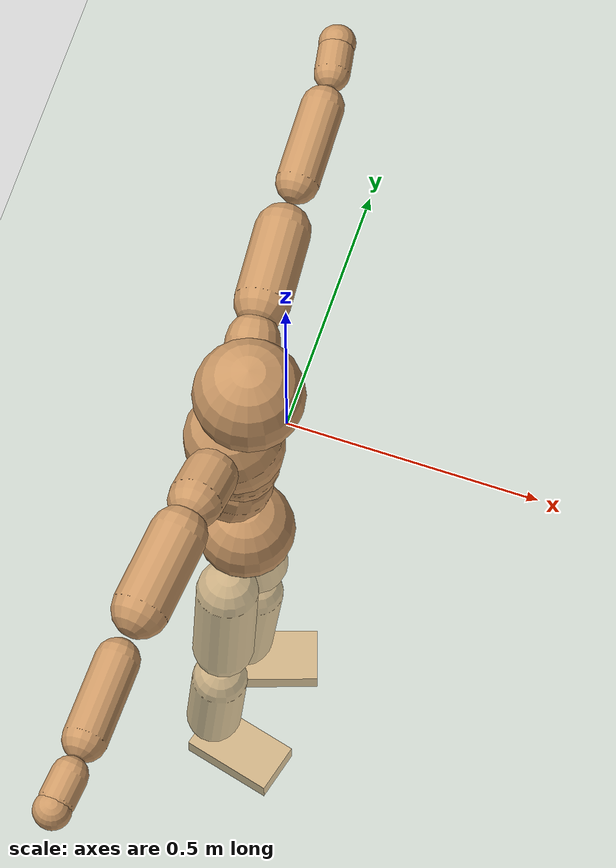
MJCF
<mujoco model="humanoid">
  <compiler coordinate="local"/>
  <default>
    <joint damping="0.0" armature="0.01" stiffness="0.0" limited="true"/>
    <geom conaffinity="1" condim="3" contype="7" margin="0.001" rgba="0.8 0.6 .4 1"/>
  </default>
  <asset>
    <texture type="skybox" builtin="gradient" rgb1=".4 .5 .6" rgb2="0 0 0" width="100" height="100"/>
    <texture builtin="flat" height="1278" mark="cross" markrgb="1 1 1" name="texgeom" random="0.01" rgb1="0.8 0.6 0.4" rgb2="0.8 0.6 0.4" type="cube" width="127"/>
    <texture builtin="checker" height="100" name="texplane" rgb1="0 0 0" rgb2="0.8 0.8 0.8" type="2d" width="100"/>
    <material name="MatPlane" reflectance="0.5" shininess="1" specular="1" texrepeat="60 60" texture="texplane"/>
    <material name="geom" texture="texgeom" texuniform="true"/>
  </asset>
  <worldbody>
    <light cutoff="100" diffuse="1 1 1" dir="-0 0 -1.3" directional="true" exponent="1" pos="0 0 1.3" specular=".1 .1 .1"/>
    <geom conaffinity="1" condim="3" name="floor" pos="0 0 0" rgba="0.8 0.9 0.8 1" size="100 100 .2" type="plane" material="MatPlane"/>
    <body name="Pelvis" pos="-0.0019 -0.2391 0.0251">
      <freejoint name="Pelvis"/>
      <geom type="sphere" contype="1" conaffinity="1" density="500" size="0.0948" pos="0.0000 0.0000 0.0000" name="Pelvis"/>
      <body name="L_Hip" pos="-0.0186 0.0574 -0.0818">
        <joint name="L_Hip_x" type="hinge" pos="0 0 0" axis="1 0 0" stiffness="800" damping="80" armature="0.02" range="-180.0000 180.0000"/>
        <joint name="L_Hip_y" type="hinge" pos="0 0 0" axis="0 1 0" stiffness="800" damping="80" armature="0.02" range="-180.0000 180.0000"/>
        <joint name="L_Hip_z" type="hinge" pos="0 0 0" axis="0 0 1" stiffness="800" damping="80" armature="0.02" range="-180.0000 180.0000"/>
        <geom type="capsule" contype="1" conaffinity="1" density="500" fromto="0.0017 0.0087 -0.0767 0.0069 0.0346 -0.3069" size="0.0607" name="L_Hip"/>
        <body name="L_Knee" pos="0.0087 0.0433 -0.3836">
          <joint name="L_Knee_x" type="hinge" pos="0 0 0" axis="1 0 0" stiffness="800" damping="80" armature="0.02" range="-180.0000 180.0000"/>
          <joint name="L_Knee_y" type="hinge" pos="0 0 0" axis="0 1 0" stiffness="800" damping="80" armature="0.02" range="-180.0000 180.0000"/>
          <joint name="L_Knee_z" type="hinge" pos="0 0 0" axis="0 0 1" stiffness="800" damping="80" armature="0.02" range="-180.0000 180.0000"/>
          <geom type="capsule" contype="1" conaffinity="1" density="500" fromto="-0.0073 -0.0029 -0.0842 -0.0293 -0.0116 -0.3368" size="0.0541" name="L_Knee"/>
          <body name="L_Ankle" pos="-0.0366 -0.0144 -0.421">
            <joint name="L_Ankle_x" type="hinge" pos="0 0 0" axis="1 0 0" stiffness="800" damping="80" armature="0.02" range="-180.0000 180.0000"/>
            <joint name="L_Ankle_y" type="hinge" pos="0 0 0" axis="0 1 0" stiffness="800" damping="80" armature="0.02" range="-180.0000 180.0000"/>
            <joint name="L_Ankle_z" type="hinge" pos="0 0 0" axis="0 0 1" stiffness="800" damping="80" armature="0.02" range="-180.0000 180.0000"/>
            <geom type="box" contype="1" conaffinity="1" density="500" pos="0.0605 0.0210 -0.0299" size="0.0876 0.0521 0.0213" quat="0.9861 0.0000 0.0000 0.1663" name="L_Ankle"/>
            <body name="L_Toe" pos="0.121 0.042 -0.0598">
              <joint name="L_Toe_x" type="hinge" pos="0 0 0" axis="1 0 0" stiffness="500" damping="50" armature="0.02" range="-180.0000 180.0000"/>
              <joint name="L_Toe_y" type="hinge" pos="0 0 0" axis="0 1 0" stiffness="500" damping="50" armature="0.02" range="-180.0000 180.0000"/>
              <joint name="L_Toe_z" type="hinge" pos="0 0 0" axis="0 0 1" stiffness="500" damping="50" armature="0.02" range="-180.0000 180.0000"/>
              <geom type="box" contype="1" conaffinity="1" density="500" pos="0.0000 0.0000 0.0294" size="0.0011 0.0025 0.001" quat="0.9853 0.0000 0.0000 0.1709" name="L_Toe"/>
            </body>
          </body>
        </body>
      </body>
      <body name="R_Hip" pos="-0.0146 -0.0591 -0.0901">
        <joint name="R_Hip_x" type="hinge" pos="0 0 0" axis="1 0 0" stiffness="800" damping="80" armature="0.02" range="-180.0000 180.0000"/>
        <joint name="R_Hip_y" type="hinge" pos="0 0 0" axis="0 1 0" stiffness="800" damping="80" armature="0.02" range="-180.0000 180.0000"/>
        <joint name="R_Hip_z" type="hinge" pos="0 0 0" axis="0 0 1" stiffness="800" damping="80" armature="0.02" range="-180.0000 180.0000"/>
        <geom type="capsule" contype="1" conaffinity="1" density="500" fromto="-0.0008 -0.0086 -0.0759 -0.0033 -0.0346 -0.3037" size="0.0601" name="R_Hip"/>
        <body name="R_Knee" pos="-0.0042 -0.0432 -0.3796">
          <joint name="R_Knee_x" type="hinge" pos="0 0 0" axis="1 0 0" stiffness="800" damping="80" armature="0.02" range="-180.0000 180.0000"/>
          <joint name="R_Knee_y" type="hinge" pos="0 0 0" axis="0 1 0" stiffness="800" damping="80" armature="0.02" range="-180.0000 180.0000"/>
          <joint name="R_Knee_z" type="hinge" pos="0 0 0" axis="0 0 1" stiffness="800" damping="80" armature="0.02" range="-180.0000 180.0000"/>
          <geom type="capsule" contype="1" conaffinity="1" density="500" fromto="-0.0068 0.0037 -0.0827 -0.0272 0.0150 -0.3310" size="0.0545" name="R_Knee"/>
          <body name="R_Ankle" pos="-0.034 0.0187 -0.4137">
            <joint name="R_Ankle_x" type="hinge" pos="0 0 0" axis="1 0 0" stiffness="800" damping="80" armature="0.02" range="-180.0000 180.0000"/>
            <joint name="R_Ankle_y" type="hinge" pos="0 0 0" axis="0 1 0" stiffness="800" damping="80" armature="0.02" range="-180.0000 180.0000"/>
            <joint name="R_Ankle_z" type="hinge" pos="0 0 0" axis="0 0 1" stiffness="800" damping="80" armature="0.02" range="-180.0000 180.0000"/>
            <geom type="box" contype="1" conaffinity="1" density="500" pos="0.0649 -0.0167 -0.0307" size="0.0907 0.0508 0.0217" quat="0.9921 0.0000 0.0000 -0.1255" name="R_Ankle"/>
            <body name="R_Toe" pos="0.1299 -0.0334 -0.0613">
              <joint name="R_Toe_x" type="hinge" pos="0 0 0" axis="1 0 0" stiffness="500" damping="50" armature="0.02" range="-180.0000 180.0000"/>
              <joint name="R_Toe_y" type="hinge" pos="0 0 0" axis="0 1 0" stiffness="500" damping="50" armature="0.02" range="-180.0000 180.0000"/>
              <joint name="R_Toe_z" type="hinge" pos="0 0 0" axis="0 0 1" stiffness="500" damping="50" armature="0.02" range="-180.0000 180.0000"/>
              <geom type="box" contype="1" conaffinity="1" density="500" pos="0.0000 0.0000 0.0309" size="0.0011 0.0025 0.0011" quat="0.9932 0.0000 0.0000 -0.1166" name="R_Toe"/>
            </body>
          </body>
        </body>
      </body>
      <body name="Torso" pos="-0.0357 0.0043 0.1233">
        <joint name="Torso_x" type="hinge" pos="0 0 0" axis="1 0 0" stiffness="1000" damping="100" armature="0.02" range="-180.0000 180.0000"/>
        <joint name="Torso_y" type="hinge" pos="0 0 0" axis="0 1 0" stiffness="1000" damping="100" armature="0.02" range="-180.0000 180.0000"/>
        <joint name="Torso_z" type="hinge" pos="0 0 0" axis="0 0 1" stiffness="1000" damping="100" armature="0.02" range="-180.0000 180.0000"/>
        <geom type="capsule" contype="1" conaffinity="1" density="500" fromto="0.0167 0.0027 0.0826 0.0111 0.0018 0.0551" size="0.073005" name="Torso"/>
        <body name="Spine" pos="0.0278 0.0046 0.1377">
          <joint name="Spine_x" type="hinge" pos="0 0 0" axis="1 0 0" stiffness="1000" damping="100" armature="0.02" range="-180.0000 180.0000"/>
          <joint name="Spine_y" type="hinge" pos="0 0 0" axis="0 1 0" stiffness="1000" damping="100" armature="0.02" range="-180.0000 180.0000"/>
          <joint name="Spine_z" type="hinge" pos="0 0 0" axis="0 0 1" stiffness="1000" damping="100" armature="0.02" range="-180.0000 180.0000"/>
          <geom type="capsule" contype="1" conaffinity="1" density="500" fromto="0.0016 -0.0014 0.0335 0.0011 -0.0009 0.0223" size="0.071982" name="Spine"/>
          <body name="Chest" pos="0.0027 -0.0023 0.0559">
            <joint name="Chest_x" type="hinge" pos="0 0 0" axis="1 0 0" stiffness="1000" damping="100" armature="0.02" range="-180.0000 180.0000"/>
            <joint name="Chest_y" type="hinge" pos="0 0 0" axis="0 1 0" stiffness="1000" damping="100" armature="0.02" range="-180.0000 180.0000"/>
            <joint name="Chest_z" type="hinge" pos="0 0 0" axis="0 0 1" stiffness="1000" damping="100" armature="0.02" range="-180.0000 180.0000"/>
            <geom type="capsule" contype="1" conaffinity="1" density="500" fromto="-0.0150 -0.0049 0.0863 -0.0100 -0.0032 0.0575" size="0.092442" name="Chest"/>
            <body name="Neck" pos="-0.0322 -0.013 0.2081">
              <joint name="Neck_x" type="hinge" pos="0 0 0" axis="1 0 0" stiffness="500" damping="50" armature="0.02" range="-180.0000 180.0000"/>
              <joint name="Neck_y" type="hinge" pos="0 0 0" axis="0 1 0" stiffness="500" damping="50" armature="0.02" range="-180.0000 180.0000"/>
              <joint name="Neck_z" type="hinge" pos="0 0 0" axis="0 0 1" stiffness="500" damping="50" armature="0.02" range="-180.0000 180.0000"/>
              <geom type="capsule" contype="1" conaffinity="1" density="500" fromto="0.0099 0.0020 0.0177 0.0397 0.0078 0.0709" size="0.041571" name="Neck"/>
              <body name="Head" pos="0.0497 0.0098 0.0887">
                <joint name="Head_x" type="hinge" pos="0 0 0" axis="1 0 0" stiffness="500" damping="50" armature="0.02" range="-180.0000 180.0000"/>
                <joint name="Head_y" type="hinge" pos="0 0 0" axis="0 1 0" stiffness="500" damping="50" armature="0.02" range="-180.0000 180.0000"/>
                <joint name="Head_z" type="hinge" pos="0 0 0" axis="0 0 1" stiffness="500" damping="50" armature="0.02" range="-180.0000 180.0000"/>
                <geom type="sphere" contype="1" conaffinity="1" density="500" size="0.1034" pos="0.0000 0.0000 0.0000" name="Head"/>
              </body>
            </body>
            <body name="L_Thorax" pos="-0.0193 0.0695 0.1123">
              <joint name="L_Thorax_x" type="hinge" pos="0 0 0" axis="1 0 0" stiffness="500" damping="50" armature="0.02" range="-180.0000 180.0000"/>
              <joint name="L_Thorax_y" type="hinge" pos="0 0 0" axis="0 1 0" stiffness="500" damping="50" armature="0.02" range="-180.0000 180.0000"/>
              <joint name="L_Thorax_z" type="hinge" pos="0 0 0" axis="0 0 1" stiffness="500" damping="50" armature="0.02" range="-180.0000 180.0000"/>
              <geom type="capsule" contype="1" conaffinity="1" density="500" fromto="-0.0035 0.0239 0.0089 -0.0140 0.0957 0.0357" size="0.0515" name="L_Thorax"/>
              <body name="L_Shoulder" pos="-0.0175 0.1197 0.0446">
                <joint name="L_Shoulder_x" type="hinge" pos="0 0 0" axis="1 0 0" stiffness="500" damping="50" armature="0.02" range="-720.0000 720.0000"/>
                <joint name="L_Shoulder_y" type="hinge" pos="0 0 0" axis="0 1 0" stiffness="500" damping="50" armature="0.02" range="-720.0000 720.0000"/>
                <joint name="L_Shoulder_z" type="hinge" pos="0 0 0" axis="0 0 1" stiffness="500" damping="50" armature="0.02" range="-720.0000 720.0000"/>
                <geom type="capsule" contype="1" conaffinity="1" density="500" fromto="-0.0042 0.0510 -0.0031 -0.0170 0.2040 -0.0123" size="0.0534" name="L_Shoulder"/>
                <body name="L_Elbow" pos="-0.0212 0.2549 -0.0153">
                  <joint name="L_Elbow_x" type="hinge" pos="0 0 0" axis="1 0 0" stiffness="500" damping="50" armature="0.02" range="-720.0000 720.0000"/>
                  <joint name="L_Elbow_y" type="hinge" pos="0 0 0" axis="0 1 0" stiffness="500" damping="50" armature="0.02" range="-720.0000 720.0000"/>
                  <joint name="L_Elbow_z" type="hinge" pos="0 0 0" axis="0 0 1" stiffness="500" damping="50" armature="0.02" range="-720.0000 720.0000"/>
                  <geom type="capsule" contype="1" conaffinity="1" density="500" fromto="-0.0017 0.0528 0.0024 -0.0066 0.2112 0.0096" size="0.0415" name="L_Elbow"/>
                  <body name="L_Wrist" pos="-0.0083 0.2641 0.012">
                    <joint name="L_Wrist_x" type="hinge" pos="0 0 0" axis="1 0 0" stiffness="300" damping="30" armature="0.02" range="-180.0000 180.0000"/>
                    <joint name="L_Wrist_y" type="hinge" pos="0 0 0" axis="0 1 0" stiffness="300" damping="30" armature="0.02" range="-180.0000 180.0000"/>
                    <joint name="L_Wrist_z" type="hinge" pos="0 0 0" axis="0 0 1" stiffness="300" damping="30" armature="0.02" range="-180.0000 180.0000"/>
                    <geom type="capsule" contype="1" conaffinity="1" density="500" fromto="-0.0031 0.0173 -0.0021 -0.0125 0.0690 -0.0084" size="0.0339" name="L_Wrist"/>
                    <body name="L_Hand" pos="-0.0156 0.0863 -0.0105">
                      <joint name="L_Hand_x" type="hinge" pos="0 0 0" axis="1 0 0" stiffness="300" damping="30" armature="0.02" range="-180.0000 180.0000"/>
                      <joint name="L_Hand_y" type="hinge" pos="0 0 0" axis="0 1 0" stiffness="300" damping="30" armature="0.02" range="-180.0000 180.0000"/>
                      <joint name="L_Hand_z" type="hinge" pos="0 0 0" axis="0 0 1" stiffness="300" damping="30" armature="0.02" range="-180.0000 180.0000"/>
                      <geom type="sphere" contype="1" conaffinity="1" density="500" size="0.0354" pos="0.0000 0.0000 0.0000" name="L_Hand"/>
                    </body>
                  </body>
                </body>
              </body>
            </body>
            <body name="R_Thorax" pos="-0.0235 -0.0808 0.1109">
              <joint name="R_Thorax_x" type="hinge" pos="0 0 0" axis="1 0 0" stiffness="500" damping="50" armature="0.02" range="-180.0000 180.0000"/>
              <joint name="R_Thorax_y" type="hinge" pos="0 0 0" axis="0 1 0" stiffness="500" damping="50" armature="0.02" range="-180.0000 180.0000"/>
              <joint name="R_Thorax_z" type="hinge" pos="0 0 0" axis="0 0 1" stiffness="500" damping="50" armature="0.02" range="-180.0000 180.0000"/>
              <geom type="capsule" contype="1" conaffinity="1" density="500" fromto="-0.0014 -0.0221 0.0092 -0.0058 -0.0884 0.0368" size="0.0517" name="R_Thorax"/>
              <body name="R_Shoulder" pos="-0.0072 -0.1106 0.0459">
                <joint name="R_Shoulder_x" type="hinge" pos="0 0 0" axis="1 0 0" stiffness="500" damping="50" armature="0.02" range="-720.0000 720.0000"/>
                <joint name="R_Shoulder_y" type="hinge" pos="0 0 0" axis="0 1 0" stiffness="500" damping="50" armature="0.02" range="-720.0000 720.0000"/>
                <joint name="R_Shoulder_z" type="hinge" pos="0 0 0" axis="0 0 1" stiffness="500" damping="50" armature="0.02" range="-720.0000 720.0000"/>
                <geom type="capsule" contype="1" conaffinity="1" density="500" fromto="-0.0058 -0.0518 -0.0029 -0.0234 -0.2073 -0.0118" size="0.0544" name="R_Shoulder"/>
                <body name="R_Elbow" pos="-0.0292 -0.2591 -0.0147">
                  <joint name="R_Elbow_x" type="hinge" pos="0 0 0" axis="1 0 0" stiffness="500" damping="50" armature="0.02" range="-720.0000 720.0000"/>
                  <joint name="R_Elbow_y" type="hinge" pos="0 0 0" axis="0 1 0" stiffness="500" damping="50" armature="0.02" range="-720.0000 720.0000"/>
                  <joint name="R_Elbow_z" type="hinge" pos="0 0 0" axis="0 0 1" stiffness="500" damping="50" armature="0.02" range="-720.0000 720.0000"/>
                  <geom type="capsule" contype="1" conaffinity="1" density="500" fromto="-0.0013 -0.0538 0.0015 -0.0052 -0.2150 0.0061" size="0.0423" name="R_Elbow"/>
                  <body name="R_Wrist" pos="-0.0065 -0.2688 0.0077">
                    <joint name="R_Wrist_x" type="hinge" pos="0 0 0" axis="1 0 0" stiffness="300" damping="30" armature="0.02" range="-180.0000 180.0000"/>
                    <joint name="R_Wrist_y" type="hinge" pos="0 0 0" axis="0 1 0" stiffness="300" damping="30" armature="0.02" range="-180.0000 180.0000"/>
                    <joint name="R_Wrist_z" type="hinge" pos="0 0 0" axis="0 0 1" stiffness="300" damping="30" armature="0.02" range="-180.0000 180.0000"/>
                    <geom type="capsule" contype="1" conaffinity="1" density="500" fromto="-0.0020 -0.0177 -0.0017 -0.0081 -0.0708 -0.0069" size="0.0346" name="R_Wrist"/>
                    <body name="R_Hand" pos="-0.0101 -0.0886 -0.0086">
                      <joint name="R_Hand_x" type="hinge" pos="0 0 0" axis="1 0 0" stiffness="300" damping="30" armature="0.02" range="-180.0000 180.0000"/>
                      <joint name="R_Hand_y" type="hinge" pos="0 0 0" axis="0 1 0" stiffness="300" damping="30" armature="0.02" range="-180.0000 180.0000"/>
                      <joint name="R_Hand_z" type="hinge" pos="0 0 0" axis="0 0 1" stiffness="300" damping="30" armature="0.02" range="-180.0000 180.0000"/>
                      <geom type="sphere" contype="1" conaffinity="1" density="500" size="0.0360" pos="0.0000 0.0000 0.0000" name="R_Hand"/>
                    </body>
                  </body>
                </body>
              </body>
            </body>
          </body>
        </body>
      </body>
    </body>
  </worldbody>
  <actuator>
    <motor name="L_Hip_x" joint="L_Hip_x" gear="500"/>
    <motor name="L_Hip_y" joint="L_Hip_y" gear="500"/>
    <motor name="L_Hip_z" joint="L_Hip_z" gear="500"/>
    <motor name="L_Knee_x" joint="L_Knee_x" gear="500"/>
    <motor name="L_Knee_y" joint="L_Knee_y" gear="500"/>
    <motor name="L_Knee_z" joint="L_Knee_z" gear="500"/>
    <motor name="L_Ankle_x" joint="L_Ankle_x" gear="500"/>
    <motor name="L_Ankle_y" joint="L_Ankle_y" gear="500"/>
    <motor name="L_Ankle_z" joint="L_Ankle_z" gear="500"/>
    <motor name="L_Toe_x" joint="L_Toe_x" gear="500"/>
    <motor name="L_Toe_y" joint="L_Toe_y" gear="500"/>
    <motor name="L_Toe_z" joint="L_Toe_z" gear="500"/>
    <motor name="R_Hip_x" joint="R_Hip_x" gear="500"/>
    <motor name="R_Hip_y" joint="R_Hip_y" gear="500"/>
    <motor name="R_Hip_z" joint="R_Hip_z" gear="500"/>
    <motor name="R_Knee_x" joint="R_Knee_x" gear="500"/>
    <motor name="R_Knee_y" joint="R_Knee_y" gear="500"/>
    <motor name="R_Knee_z" joint="R_Knee_z" gear="500"/>
    <motor name="R_Ankle_x" joint="R_Ankle_x" gear="500"/>
    <motor name="R_Ankle_y" joint="R_Ankle_y" gear="500"/>
    <motor name="R_Ankle_z" joint="R_Ankle_z" gear="500"/>
    <motor name="R_Toe_x" joint="R_Toe_x" gear="500"/>
    <motor name="R_Toe_y" joint="R_Toe_y" gear="500"/>
    <motor name="R_Toe_z" joint="R_Toe_z" gear="500"/>
    <motor name="Torso_x" joint="Torso_x" gear="500"/>
    <motor name="Torso_y" joint="Torso_y" gear="500"/>
    <motor name="Torso_z" joint="Torso_z" gear="500"/>
    <motor name="Spine_x" joint="Spine_x" gear="500"/>
    <motor name="Spine_y" joint="Spine_y" gear="500"/>
    <motor name="Spine_z" joint="Spine_z" gear="500"/>
    <motor name="Chest_x" joint="Chest_x" gear="500"/>
    <motor name="Chest_y" joint="Chest_y" gear="500"/>
    <motor name="Chest_z" joint="Chest_z" gear="500"/>
    <motor name="Neck_x" joint="Neck_x" gear="500"/>
    <motor name="Neck_y" joint="Neck_y" gear="500"/>
    <motor name="Neck_z" joint="Neck_z" gear="500"/>
    <motor name="Head_x" joint="Head_x" gear="500"/>
    <motor name="Head_y" joint="Head_y" gear="500"/>
    <motor name="Head_z" joint="Head_z" gear="500"/>
    <motor name="L_Thorax_x" joint="L_Thorax_x" gear="500"/>
    <motor name="L_Thorax_y" joint="L_Thorax_y" gear="500"/>
    <motor name="L_Thorax_z" joint="L_Thorax_z" gear="500"/>
    <motor name="L_Shoulder_x" joint="L_Shoulder_x" gear="500"/>
    <motor name="L_Shoulder_y" joint="L_Shoulder_y" gear="500"/>
    <motor name="L_Shoulder_z" joint="L_Shoulder_z" gear="500"/>
    <motor name="L_Elbow_x" joint="L_Elbow_x" gear="500"/>
    <motor name="L_Elbow_y" joint="L_Elbow_y" gear="500"/>
    <motor name="L_Elbow_z" joint="L_Elbow_z" gear="500"/>
    <motor name="L_Wrist_x" joint="L_Wrist_x" gear="500"/>
    <motor name="L_Wrist_y" joint="L_Wrist_y" gear="500"/>
    <motor name="L_Wrist_z" joint="L_Wrist_z" gear="500"/>
    <motor name="L_Hand_x" joint="L_Hand_x" gear="500"/>
    <motor name="L_Hand_y" joint="L_Hand_y" gear="500"/>
    <motor name="L_Hand_z" joint="L_Hand_z" gear="500"/>
    <motor name="R_Thorax_x" joint="R_Thorax_x" gear="500"/>
    <motor name="R_Thorax_y" joint="R_Thorax_y" gear="500"/>
    <motor name="R_Thorax_z" joint="R_Thorax_z" gear="500"/>
    <motor name="R_Shoulder_x" joint="R_Shoulder_x" gear="500"/>
    <motor name="R_Shoulder_y" joint="R_Shoulder_y" gear="500"/>
    <motor name="R_Shoulder_z" joint="R_Shoulder_z" gear="500"/>
    <motor name="R_Elbow_x" joint="R_Elbow_x" gear="500"/>
    <motor name="R_Elbow_y" joint="R_Elbow_y" gear="500"/>
    <motor name="R_Elbow_z" joint="R_Elbow_z" gear="500"/>
    <motor name="R_Wrist_x" joint="R_Wrist_x" gear="500"/>
    <motor name="R_Wrist_y" joint="R_Wrist_y" gear="500"/>
    <motor name="R_Wrist_z" joint="R_Wrist_z" gear="500"/>
    <motor name="R_Hand_x" joint="R_Hand_x" gear="500"/>
    <motor name="R_Hand_y" joint="R_Hand_y" gear="500"/>
    <motor name="R_Hand_z" joint="R_Hand_z" gear="500"/>
  </actuator>
  <contact>
    <exclude body1="Torso" body2="Chest"/>
    <exclude body1="Head" body2="Chest"/>
    <exclude body1="R_Knee" body2="R_Toe"/>
    <exclude body1="R_Knee" body2="L_Ankle"/>
    <exclude body1="R_Knee" body2="L_Toe"/>
    <exclude body1="L_Knee" body2="L_Toe"/>
    <exclude body1="L_Knee" body2="R_Ankle"/>
    <exclude body1="L_Knee" body2="R_Toe"/>
    <exclude body1="L_Shoulder" body2="Chest"/>
    <exclude body1="R_Shoulder" body2="Chest"/>
  </contact>
  <sensor/>
  <size njmax="700" nconmax="700"/>
</mujoco>
